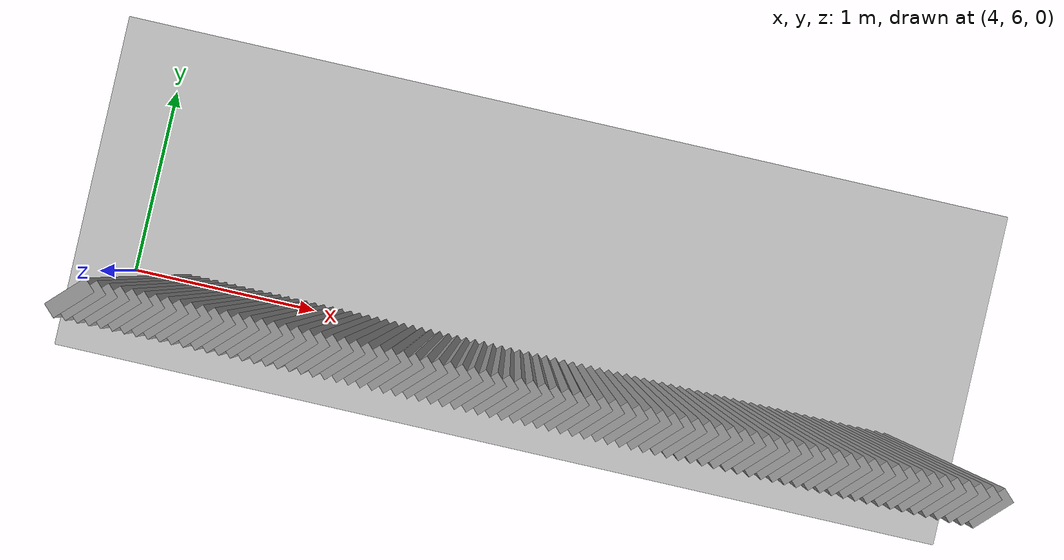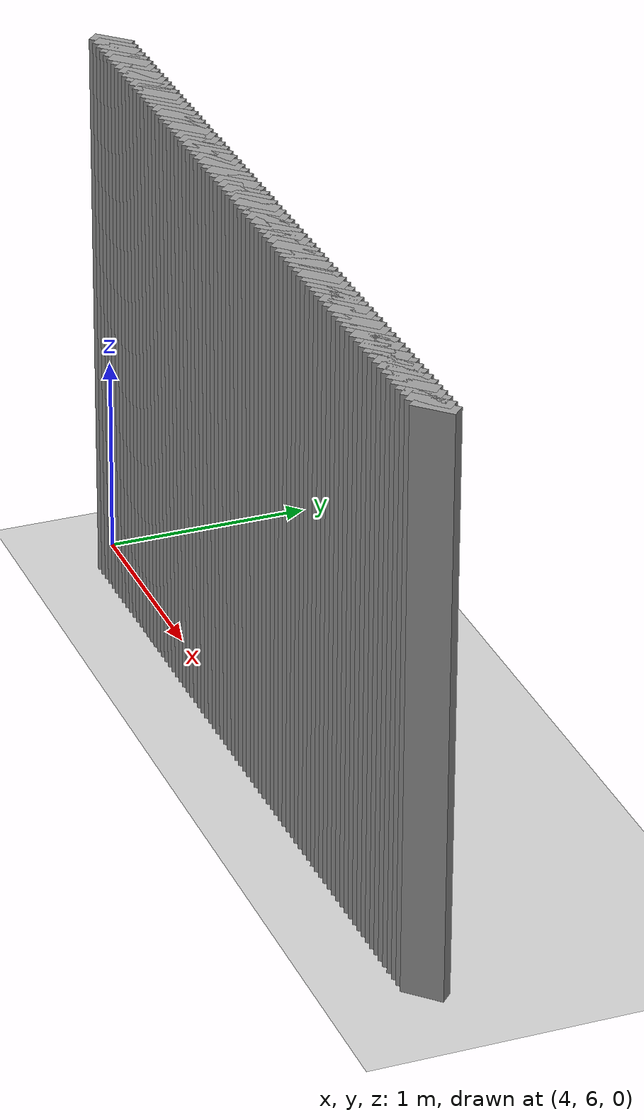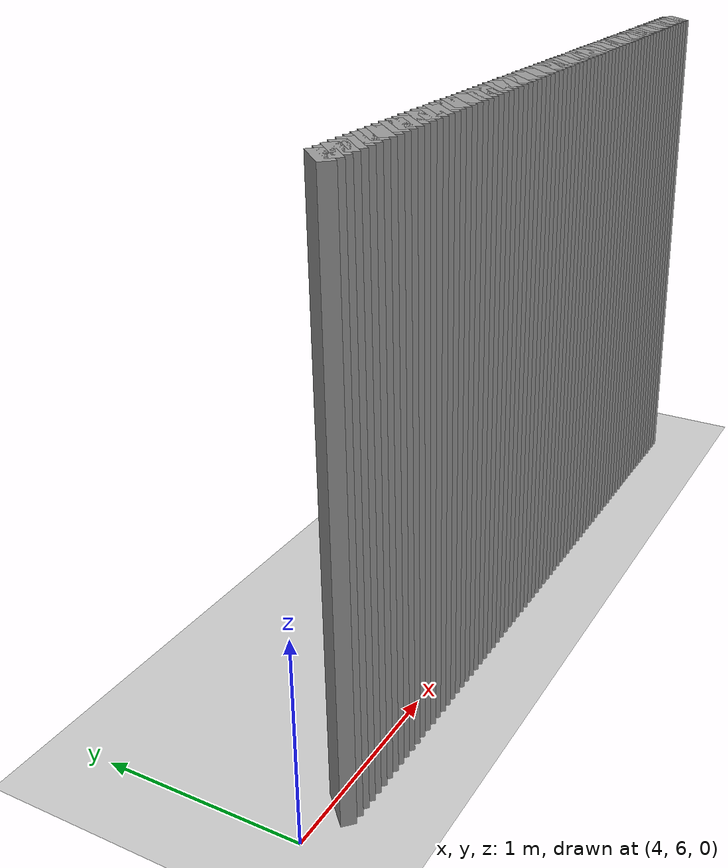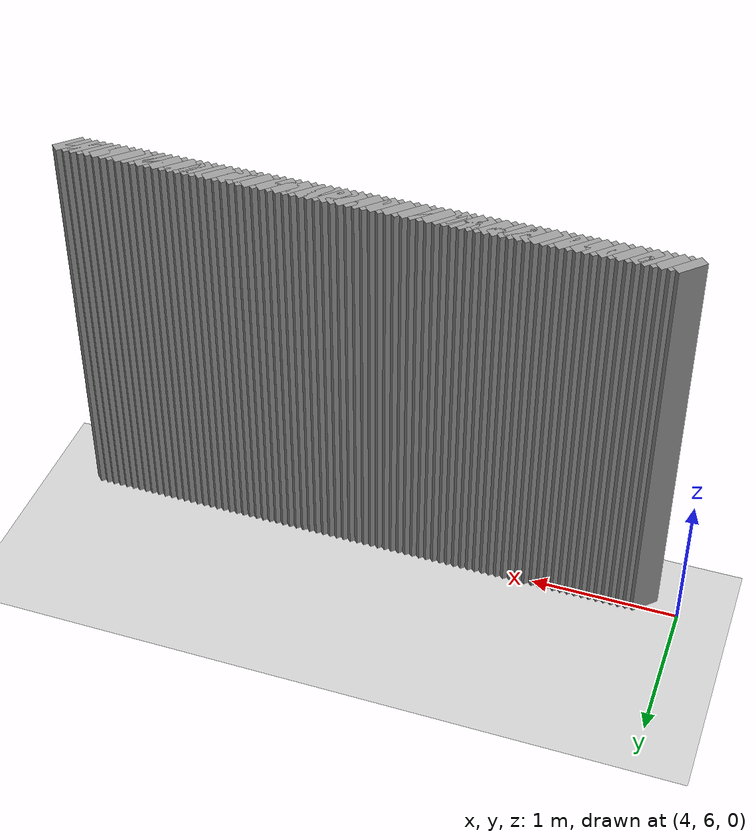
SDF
<sdf version="1.5">
 <world name="default">
  <include><uri>model://ground_plane</uri></include>
  <include><uri>model://sun</uri></include>
  <model name="grey_wall_4412">
   <static>1</static>
   <link name="link">
    <pose>4.25 5.95  1.4 0 0 -0.785398163397</pose>
    <collision name="collision"><geometry><box><size>0.0707106781187 .2  2.8</size></box></geometry></collision>
    <visual name="visual">
     <cast_shadows>0</cast_shadows>
     <geometry><box><size>0.0707106781187 .2  2.8</size></box></geometry>
     <material>
      <script>
       <uri>model://grey_wall/materials/scripts</uri>
       <uri>model://grey_wall/materials/textures</uri>
       <name>vrc/grey_wall</name>
      </script>
     </material>
    </visual>
   </link>
  </model>
  <model name="grey_wall_4413">
   <static>1</static>
   <link name="link">
    <pose>4.3 5.95  1.4 0 0 -0.785398163397</pose>
    <collision name="collision"><geometry><box><size>0.0707106781187 .2  2.8</size></box></geometry></collision>
    <visual name="visual">
     <cast_shadows>0</cast_shadows>
     <geometry><box><size>0.0707106781187 .2  2.8</size></box></geometry>
     <material>
      <script>
       <uri>model://grey_wall/materials/scripts</uri>
       <uri>model://grey_wall/materials/textures</uri>
       <name>vrc/grey_wall</name>
      </script>
     </material>
    </visual>
   </link>
  </model>
  <model name="grey_wall_4414">
   <static>1</static>
   <link name="link">
    <pose>4.35 5.95  1.4 0 0 -0.785398163397</pose>
    <collision name="collision"><geometry><box><size>0.0707106781187 .2  2.8</size></box></geometry></collision>
    <visual name="visual">
     <cast_shadows>0</cast_shadows>
     <geometry><box><size>0.0707106781187 .2  2.8</size></box></geometry>
     <material>
      <script>
       <uri>model://grey_wall/materials/scripts</uri>
       <uri>model://grey_wall/materials/textures</uri>
       <name>vrc/grey_wall</name>
      </script>
     </material>
    </visual>
   </link>
  </model>
  <model name="grey_wall_4415">
   <static>1</static>
   <link name="link">
    <pose>4.4 5.95  1.4 0 0 -0.785398163397</pose>
    <collision name="collision"><geometry><box><size>0.0707106781187 .2  2.8</size></box></geometry></collision>
    <visual name="visual">
     <cast_shadows>0</cast_shadows>
     <geometry><box><size>0.0707106781187 .2  2.8</size></box></geometry>
     <material>
      <script>
       <uri>model://grey_wall/materials/scripts</uri>
       <uri>model://grey_wall/materials/textures</uri>
       <name>vrc/grey_wall</name>
      </script>
     </material>
    </visual>
   </link>
  </model>
  <model name="grey_wall_4416">
   <static>1</static>
   <link name="link">
    <pose>4.45 5.95  1.4 0 0 -0.785398163397</pose>
    <collision name="collision"><geometry><box><size>0.0707106781187 .2  2.8</size></box></geometry></collision>
    <visual name="visual">
     <cast_shadows>0</cast_shadows>
     <geometry><box><size>0.0707106781187 .2  2.8</size></box></geometry>
     <material>
      <script>
       <uri>model://grey_wall/materials/scripts</uri>
       <uri>model://grey_wall/materials/textures</uri>
       <name>vrc/grey_wall</name>
      </script>
     </material>
    </visual>
   </link>
  </model>
  <model name="grey_wall_4417">
   <static>1</static>
   <link name="link">
    <pose>4.5 5.95  1.4 0 0 -0.785398163397</pose>
    <collision name="collision"><geometry><box><size>0.0707106781187 .2  2.8</size></box></geometry></collision>
    <visual name="visual">
     <cast_shadows>0</cast_shadows>
     <geometry><box><size>0.0707106781187 .2  2.8</size></box></geometry>
     <material>
      <script>
       <uri>model://grey_wall/materials/scripts</uri>
       <uri>model://grey_wall/materials/textures</uri>
       <name>vrc/grey_wall</name>
      </script>
     </material>
    </visual>
   </link>
  </model>
  <model name="grey_wall_4418">
   <static>1</static>
   <link name="link">
    <pose>4.55 5.95  1.4 0 0 -0.785398163397</pose>
    <collision name="collision"><geometry><box><size>0.0707106781187 .2  2.8</size></box></geometry></collision>
    <visual name="visual">
     <cast_shadows>0</cast_shadows>
     <geometry><box><size>0.0707106781187 .2  2.8</size></box></geometry>
     <material>
      <script>
       <uri>model://grey_wall/materials/scripts</uri>
       <uri>model://grey_wall/materials/textures</uri>
       <name>vrc/grey_wall</name>
      </script>
     </material>
    </visual>
   </link>
  </model>
  <model name="grey_wall_4419">
   <static>1</static>
   <link name="link">
    <pose>4.6 5.95  1.4 0 0 -0.785398163397</pose>
    <collision name="collision"><geometry><box><size>0.0707106781187 .2  2.8</size></box></geometry></collision>
    <visual name="visual">
     <cast_shadows>0</cast_shadows>
     <geometry><box><size>0.0707106781187 .2  2.8</size></box></geometry>
     <material>
      <script>
       <uri>model://grey_wall/materials/scripts</uri>
       <uri>model://grey_wall/materials/textures</uri>
       <name>vrc/grey_wall</name>
      </script>
     </material>
    </visual>
   </link>
  </model>
  <model name="grey_wall_4420">
   <static>1</static>
   <link name="link">
    <pose>4.65 5.95  1.4 0 0 -0.785398163397</pose>
    <collision name="collision"><geometry><box><size>0.0707106781187 .2  2.8</size></box></geometry></collision>
    <visual name="visual">
     <cast_shadows>0</cast_shadows>
     <geometry><box><size>0.0707106781187 .2  2.8</size></box></geometry>
     <material>
      <script>
       <uri>model://grey_wall/materials/scripts</uri>
       <uri>model://grey_wall/materials/textures</uri>
       <name>vrc/grey_wall</name>
      </script>
     </material>
    </visual>
   </link>
  </model>
  <model name="grey_wall_4421">
   <static>1</static>
   <link name="link">
    <pose>4.7 5.95  1.4 0 0 -0.785398163397</pose>
    <collision name="collision"><geometry><box><size>0.0707106781187 .2  2.8</size></box></geometry></collision>
    <visual name="visual">
     <cast_shadows>0</cast_shadows>
     <geometry><box><size>0.0707106781187 .2  2.8</size></box></geometry>
     <material>
      <script>
       <uri>model://grey_wall/materials/scripts</uri>
       <uri>model://grey_wall/materials/textures</uri>
       <name>vrc/grey_wall</name>
      </script>
     </material>
    </visual>
   </link>
  </model>
  <model name="grey_wall_4422">
   <static>1</static>
   <link name="link">
    <pose>4.75 5.95  1.4 0 0 -0.785398163397</pose>
    <collision name="collision"><geometry><box><size>0.0707106781187 .2  2.8</size></box></geometry></collision>
    <visual name="visual">
     <cast_shadows>0</cast_shadows>
     <geometry><box><size>0.0707106781187 .2  2.8</size></box></geometry>
     <material>
      <script>
       <uri>model://grey_wall/materials/scripts</uri>
       <uri>model://grey_wall/materials/textures</uri>
       <name>vrc/grey_wall</name>
      </script>
     </material>
    </visual>
   </link>
  </model>
  <model name="grey_wall_4423">
   <static>1</static>
   <link name="link">
    <pose>4.8 5.95  1.4 0 0 -0.785398163397</pose>
    <collision name="collision"><geometry><box><size>0.0707106781187 .2  2.8</size></box></geometry></collision>
    <visual name="visual">
     <cast_shadows>0</cast_shadows>
     <geometry><box><size>0.0707106781187 .2  2.8</size></box></geometry>
     <material>
      <script>
       <uri>model://grey_wall/materials/scripts</uri>
       <uri>model://grey_wall/materials/textures</uri>
       <name>vrc/grey_wall</name>
      </script>
     </material>
    </visual>
   </link>
  </model>
  <model name="grey_wall_4424">
   <static>1</static>
   <link name="link">
    <pose>4.85 5.95  1.4 0 0 -0.785398163397</pose>
    <collision name="collision"><geometry><box><size>0.0707106781187 .2  2.8</size></box></geometry></collision>
    <visual name="visual">
     <cast_shadows>0</cast_shadows>
     <geometry><box><size>0.0707106781187 .2  2.8</size></box></geometry>
     <material>
      <script>
       <uri>model://grey_wall/materials/scripts</uri>
       <uri>model://grey_wall/materials/textures</uri>
       <name>vrc/grey_wall</name>
      </script>
     </material>
    </visual>
   </link>
  </model>
  <model name="grey_wall_4425">
   <static>1</static>
   <link name="link">
    <pose>4.9 5.95  1.4 0 0 -0.785398163397</pose>
    <collision name="collision"><geometry><box><size>0.0707106781187 .2  2.8</size></box></geometry></collision>
    <visual name="visual">
     <cast_shadows>0</cast_shadows>
     <geometry><box><size>0.0707106781187 .2  2.8</size></box></geometry>
     <material>
      <script>
       <uri>model://grey_wall/materials/scripts</uri>
       <uri>model://grey_wall/materials/textures</uri>
       <name>vrc/grey_wall</name>
      </script>
     </material>
    </visual>
   </link>
  </model>
  <model name="grey_wall_4426">
   <static>1</static>
   <link name="link">
    <pose>4.95 5.95  1.4 0 0 -0.785398163397</pose>
    <collision name="collision"><geometry><box><size>0.0707106781187 .2  2.8</size></box></geometry></collision>
    <visual name="visual">
     <cast_shadows>0</cast_shadows>
     <geometry><box><size>0.0707106781187 .2  2.8</size></box></geometry>
     <material>
      <script>
       <uri>model://grey_wall/materials/scripts</uri>
       <uri>model://grey_wall/materials/textures</uri>
       <name>vrc/grey_wall</name>
      </script>
     </material>
    </visual>
   </link>
  </model>
  <model name="grey_wall_4427">
   <static>1</static>
   <link name="link">
    <pose>5.0 5.95  1.4 0 0 -0.785398163397</pose>
    <collision name="collision"><geometry><box><size>0.0707106781187 .2  2.8</size></box></geometry></collision>
    <visual name="visual">
     <cast_shadows>0</cast_shadows>
     <geometry><box><size>0.0707106781187 .2  2.8</size></box></geometry>
     <material>
      <script>
       <uri>model://grey_wall/materials/scripts</uri>
       <uri>model://grey_wall/materials/textures</uri>
       <name>vrc/grey_wall</name>
      </script>
     </material>
    </visual>
   </link>
  </model>
  <model name="grey_wall_4428">
   <static>1</static>
   <link name="link">
    <pose>5.05 5.95  1.4 0 0 -0.785398163397</pose>
    <collision name="collision"><geometry><box><size>0.0707106781187 .2  2.8</size></box></geometry></collision>
    <visual name="visual">
     <cast_shadows>0</cast_shadows>
     <geometry><box><size>0.0707106781187 .2  2.8</size></box></geometry>
     <material>
      <script>
       <uri>model://grey_wall/materials/scripts</uri>
       <uri>model://grey_wall/materials/textures</uri>
       <name>vrc/grey_wall</name>
      </script>
     </material>
    </visual>
   </link>
  </model>
  <model name="grey_wall_4429">
   <static>1</static>
   <link name="link">
    <pose>5.1 5.95  1.4 0 0 -0.785398163397</pose>
    <collision name="collision"><geometry><box><size>0.0707106781187 .2  2.8</size></box></geometry></collision>
    <visual name="visual">
     <cast_shadows>0</cast_shadows>
     <geometry><box><size>0.0707106781187 .2  2.8</size></box></geometry>
     <material>
      <script>
       <uri>model://grey_wall/materials/scripts</uri>
       <uri>model://grey_wall/materials/textures</uri>
       <name>vrc/grey_wall</name>
      </script>
     </material>
    </visual>
   </link>
  </model>
  <model name="grey_wall_4430">
   <static>1</static>
   <link name="link">
    <pose>5.15 5.95  1.4 0 0 -0.785398163397</pose>
    <collision name="collision"><geometry><box><size>0.0707106781187 .2  2.8</size></box></geometry></collision>
    <visual name="visual">
     <cast_shadows>0</cast_shadows>
     <geometry><box><size>0.0707106781187 .2  2.8</size></box></geometry>
     <material>
      <script>
       <uri>model://grey_wall/materials/scripts</uri>
       <uri>model://grey_wall/materials/textures</uri>
       <name>vrc/grey_wall</name>
      </script>
     </material>
    </visual>
   </link>
  </model>
  <model name="grey_wall_4431">
   <static>1</static>
   <link name="link">
    <pose>5.2 5.95  1.4 0 0 -0.785398163397</pose>
    <collision name="collision"><geometry><box><size>0.0707106781187 .2  2.8</size></box></geometry></collision>
    <visual name="visual">
     <cast_shadows>0</cast_shadows>
     <geometry><box><size>0.0707106781187 .2  2.8</size></box></geometry>
     <material>
      <script>
       <uri>model://grey_wall/materials/scripts</uri>
       <uri>model://grey_wall/materials/textures</uri>
       <name>vrc/grey_wall</name>
      </script>
     </material>
    </visual>
   </link>
  </model>
  <model name="grey_wall_4432">
   <static>1</static>
   <link name="link">
    <pose>5.25 5.95  1.4 0 0 -0.785398163397</pose>
    <collision name="collision"><geometry><box><size>0.0707106781187 .2  2.8</size></box></geometry></collision>
    <visual name="visual">
     <cast_shadows>0</cast_shadows>
     <geometry><box><size>0.0707106781187 .2  2.8</size></box></geometry>
     <material>
      <script>
       <uri>model://grey_wall/materials/scripts</uri>
       <uri>model://grey_wall/materials/textures</uri>
       <name>vrc/grey_wall</name>
      </script>
     </material>
    </visual>
   </link>
  </model>
  <model name="grey_wall_4433">
   <static>1</static>
   <link name="link">
    <pose>5.3 5.95  1.4 0 0 -0.785398163397</pose>
    <collision name="collision"><geometry><box><size>0.0707106781187 .2  2.8</size></box></geometry></collision>
    <visual name="visual">
     <cast_shadows>0</cast_shadows>
     <geometry><box><size>0.0707106781187 .2  2.8</size></box></geometry>
     <material>
      <script>
       <uri>model://grey_wall/materials/scripts</uri>
       <uri>model://grey_wall/materials/textures</uri>
       <name>vrc/grey_wall</name>
      </script>
     </material>
    </visual>
   </link>
  </model>
  <model name="grey_wall_4434">
   <static>1</static>
   <link name="link">
    <pose>5.35 5.95  1.4 0 0 -0.785398163397</pose>
    <collision name="collision"><geometry><box><size>0.0707106781187 .2  2.8</size></box></geometry></collision>
    <visual name="visual">
     <cast_shadows>0</cast_shadows>
     <geometry><box><size>0.0707106781187 .2  2.8</size></box></geometry>
     <material>
      <script>
       <uri>model://grey_wall/materials/scripts</uri>
       <uri>model://grey_wall/materials/textures</uri>
       <name>vrc/grey_wall</name>
      </script>
     </material>
    </visual>
   </link>
  </model>
  <model name="grey_wall_4435">
   <static>1</static>
   <link name="link">
    <pose>5.4 5.95  1.4 0 0 -0.785398163397</pose>
    <collision name="collision"><geometry><box><size>0.0707106781187 .2  2.8</size></box></geometry></collision>
    <visual name="visual">
     <cast_shadows>0</cast_shadows>
     <geometry><box><size>0.0707106781187 .2  2.8</size></box></geometry>
     <material>
      <script>
       <uri>model://grey_wall/materials/scripts</uri>
       <uri>model://grey_wall/materials/textures</uri>
       <name>vrc/grey_wall</name>
      </script>
     </material>
    </visual>
   </link>
  </model>
  <model name="grey_wall_4436">
   <static>1</static>
   <link name="link">
    <pose>5.45 5.95  1.4 0 0 -0.785398163397</pose>
    <collision name="collision"><geometry><box><size>0.0707106781187 .2  2.8</size></box></geometry></collision>
    <visual name="visual">
     <cast_shadows>0</cast_shadows>
     <geometry><box><size>0.0707106781187 .2  2.8</size></box></geometry>
     <material>
      <script>
       <uri>model://grey_wall/materials/scripts</uri>
       <uri>model://grey_wall/materials/textures</uri>
       <name>vrc/grey_wall</name>
      </script>
     </material>
    </visual>
   </link>
  </model>
  <model name="grey_wall_4437">
   <static>1</static>
   <link name="link">
    <pose>5.5 5.95  1.4 0 0 -0.785398163397</pose>
    <collision name="collision"><geometry><box><size>0.0707106781187 .2  2.8</size></box></geometry></collision>
    <visual name="visual">
     <cast_shadows>0</cast_shadows>
     <geometry><box><size>0.0707106781187 .2  2.8</size></box></geometry>
     <material>
      <script>
       <uri>model://grey_wall/materials/scripts</uri>
       <uri>model://grey_wall/materials/textures</uri>
       <name>vrc/grey_wall</name>
      </script>
     </material>
    </visual>
   </link>
  </model>
  <model name="grey_wall_4438">
   <static>1</static>
   <link name="link">
    <pose>5.55 5.95  1.4 0 0 -0.785398163397</pose>
    <collision name="collision"><geometry><box><size>0.0707106781187 .2  2.8</size></box></geometry></collision>
    <visual name="visual">
     <cast_shadows>0</cast_shadows>
     <geometry><box><size>0.0707106781187 .2  2.8</size></box></geometry>
     <material>
      <script>
       <uri>model://grey_wall/materials/scripts</uri>
       <uri>model://grey_wall/materials/textures</uri>
       <name>vrc/grey_wall</name>
      </script>
     </material>
    </visual>
   </link>
  </model>
  <model name="grey_wall_4439">
   <static>1</static>
   <link name="link">
    <pose>5.6 5.95  1.4 0 0 -0.785398163397</pose>
    <collision name="collision"><geometry><box><size>0.0707106781187 .2  2.8</size></box></geometry></collision>
    <visual name="visual">
     <cast_shadows>0</cast_shadows>
     <geometry><box><size>0.0707106781187 .2  2.8</size></box></geometry>
     <material>
      <script>
       <uri>model://grey_wall/materials/scripts</uri>
       <uri>model://grey_wall/materials/textures</uri>
       <name>vrc/grey_wall</name>
      </script>
     </material>
    </visual>
   </link>
  </model>
  <model name="grey_wall_4440">
   <static>1</static>
   <link name="link">
    <pose>5.65 5.95  1.4 0 0 -0.785398163397</pose>
    <collision name="collision"><geometry><box><size>0.0707106781187 .2  2.8</size></box></geometry></collision>
    <visual name="visual">
     <cast_shadows>0</cast_shadows>
     <geometry><box><size>0.0707106781187 .2  2.8</size></box></geometry>
     <material>
      <script>
       <uri>model://grey_wall/materials/scripts</uri>
       <uri>model://grey_wall/materials/textures</uri>
       <name>vrc/grey_wall</name>
      </script>
     </material>
    </visual>
   </link>
  </model>
  <model name="grey_wall_4441">
   <static>1</static>
   <link name="link">
    <pose>5.7 5.95  1.4 0 0 -0.785398163397</pose>
    <collision name="collision"><geometry><box><size>0.0707106781187 .2  2.8</size></box></geometry></collision>
    <visual name="visual">
     <cast_shadows>0</cast_shadows>
     <geometry><box><size>0.0707106781187 .2  2.8</size></box></geometry>
     <material>
      <script>
       <uri>model://grey_wall/materials/scripts</uri>
       <uri>model://grey_wall/materials/textures</uri>
       <name>vrc/grey_wall</name>
      </script>
     </material>
    </visual>
   </link>
  </model>
  <model name="grey_wall_4442">
   <static>1</static>
   <link name="link">
    <pose>5.75 5.95  1.4 0 0 -0.785398163397</pose>
    <collision name="collision"><geometry><box><size>0.0707106781187 .2  2.8</size></box></geometry></collision>
    <visual name="visual">
     <cast_shadows>0</cast_shadows>
     <geometry><box><size>0.0707106781187 .2  2.8</size></box></geometry>
     <material>
      <script>
       <uri>model://grey_wall/materials/scripts</uri>
       <uri>model://grey_wall/materials/textures</uri>
       <name>vrc/grey_wall</name>
      </script>
     </material>
    </visual>
   </link>
  </model>
  <model name="grey_wall_4443">
   <static>1</static>
   <link name="link">
    <pose>5.8 5.95  1.4 0 0 -0.785398163397</pose>
    <collision name="collision"><geometry><box><size>0.0707106781187 .2  2.8</size></box></geometry></collision>
    <visual name="visual">
     <cast_shadows>0</cast_shadows>
     <geometry><box><size>0.0707106781187 .2  2.8</size></box></geometry>
     <material>
      <script>
       <uri>model://grey_wall/materials/scripts</uri>
       <uri>model://grey_wall/materials/textures</uri>
       <name>vrc/grey_wall</name>
      </script>
     </material>
    </visual>
   </link>
  </model>
  <model name="grey_wall_4444">
   <static>1</static>
   <link name="link">
    <pose>5.85 5.95  1.4 0 0 -0.785398163397</pose>
    <collision name="collision"><geometry><box><size>0.0707106781187 .2  2.8</size></box></geometry></collision>
    <visual name="visual">
     <cast_shadows>0</cast_shadows>
     <geometry><box><size>0.0707106781187 .2  2.8</size></box></geometry>
     <material>
      <script>
       <uri>model://grey_wall/materials/scripts</uri>
       <uri>model://grey_wall/materials/textures</uri>
       <name>vrc/grey_wall</name>
      </script>
     </material>
    </visual>
   </link>
  </model>
  <model name="grey_wall_4445">
   <static>1</static>
   <link name="link">
    <pose>5.9 5.95  1.4 0 0 -0.785398163397</pose>
    <collision name="collision"><geometry><box><size>0.0707106781187 .2  2.8</size></box></geometry></collision>
    <visual name="visual">
     <cast_shadows>0</cast_shadows>
     <geometry><box><size>0.0707106781187 .2  2.8</size></box></geometry>
     <material>
      <script>
       <uri>model://grey_wall/materials/scripts</uri>
       <uri>model://grey_wall/materials/textures</uri>
       <name>vrc/grey_wall</name>
      </script>
     </material>
    </visual>
   </link>
  </model>
  <model name="grey_wall_4446">
   <static>1</static>
   <link name="link">
    <pose>5.95 5.95  1.4 0 0 -0.785398163397</pose>
    <collision name="collision"><geometry><box><size>0.0707106781187 .2  2.8</size></box></geometry></collision>
    <visual name="visual">
     <cast_shadows>0</cast_shadows>
     <geometry><box><size>0.0707106781187 .2  2.8</size></box></geometry>
     <material>
      <script>
       <uri>model://grey_wall/materials/scripts</uri>
       <uri>model://grey_wall/materials/textures</uri>
       <name>vrc/grey_wall</name>
      </script>
     </material>
    </visual>
   </link>
  </model>
  <model name="grey_wall_4447">
   <static>1</static>
   <link name="link">
    <pose>6.0 5.95  1.4 0 0 -0.785398163397</pose>
    <collision name="collision"><geometry><box><size>0.0707106781187 .2  2.8</size></box></geometry></collision>
    <visual name="visual">
     <cast_shadows>0</cast_shadows>
     <geometry><box><size>0.0707106781187 .2  2.8</size></box></geometry>
     <material>
      <script>
       <uri>model://grey_wall/materials/scripts</uri>
       <uri>model://grey_wall/materials/textures</uri>
       <name>vrc/grey_wall</name>
      </script>
     </material>
    </visual>
   </link>
  </model>
  <model name="grey_wall_4448">
   <static>1</static>
   <link name="link">
    <pose>6.05 5.95  1.4 0 0 -0.785398163397</pose>
    <collision name="collision"><geometry><box><size>0.0707106781187 .2  2.8</size></box></geometry></collision>
    <visual name="visual">
     <cast_shadows>0</cast_shadows>
     <geometry><box><size>0.0707106781187 .2  2.8</size></box></geometry>
     <material>
      <script>
       <uri>model://grey_wall/materials/scripts</uri>
       <uri>model://grey_wall/materials/textures</uri>
       <name>vrc/grey_wall</name>
      </script>
     </material>
    </visual>
   </link>
  </model>
  <model name="grey_wall_4449">
   <static>1</static>
   <link name="link">
    <pose>6.1 5.95  1.4 0 0 -0.785398163397</pose>
    <collision name="collision"><geometry><box><size>0.0707106781187 .2  2.8</size></box></geometry></collision>
    <visual name="visual">
     <cast_shadows>0</cast_shadows>
     <geometry><box><size>0.0707106781187 .2  2.8</size></box></geometry>
     <material>
      <script>
       <uri>model://grey_wall/materials/scripts</uri>
       <uri>model://grey_wall/materials/textures</uri>
       <name>vrc/grey_wall</name>
      </script>
     </material>
    </visual>
   </link>
  </model>
  <model name="grey_wall_4450">
   <static>1</static>
   <link name="link">
    <pose>6.15 5.95  1.4 0 0 -0.785398163397</pose>
    <collision name="collision"><geometry><box><size>0.0707106781187 .2  2.8</size></box></geometry></collision>
    <visual name="visual">
     <cast_shadows>0</cast_shadows>
     <geometry><box><size>0.0707106781187 .2  2.8</size></box></geometry>
     <material>
      <script>
       <uri>model://grey_wall/materials/scripts</uri>
       <uri>model://grey_wall/materials/textures</uri>
       <name>vrc/grey_wall</name>
      </script>
     </material>
    </visual>
   </link>
  </model>
  <model name="grey_wall_4451">
   <static>1</static>
   <link name="link">
    <pose>6.2 5.95  1.4 0 0 -0.785398163397</pose>
    <collision name="collision"><geometry><box><size>0.0707106781187 .2  2.8</size></box></geometry></collision>
    <visual name="visual">
     <cast_shadows>0</cast_shadows>
     <geometry><box><size>0.0707106781187 .2  2.8</size></box></geometry>
     <material>
      <script>
       <uri>model://grey_wall/materials/scripts</uri>
       <uri>model://grey_wall/materials/textures</uri>
       <name>vrc/grey_wall</name>
      </script>
     </material>
    </visual>
   </link>
  </model>
  <model name="grey_wall_4452">
   <static>1</static>
   <link name="link">
    <pose>6.25 5.95  1.4 0 0 -0.785398163397</pose>
    <collision name="collision"><geometry><box><size>0.0707106781187 .2  2.8</size></box></geometry></collision>
    <visual name="visual">
     <cast_shadows>0</cast_shadows>
     <geometry><box><size>0.0707106781187 .2  2.8</size></box></geometry>
     <material>
      <script>
       <uri>model://grey_wall/materials/scripts</uri>
       <uri>model://grey_wall/materials/textures</uri>
       <name>vrc/grey_wall</name>
      </script>
     </material>
    </visual>
   </link>
  </model>
  <model name="grey_wall_4453">
   <static>1</static>
   <link name="link">
    <pose>6.3 5.95  1.4 0 0 -0.785398163397</pose>
    <collision name="collision"><geometry><box><size>0.0707106781187 .2  2.8</size></box></geometry></collision>
    <visual name="visual">
     <cast_shadows>0</cast_shadows>
     <geometry><box><size>0.0707106781187 .2  2.8</size></box></geometry>
     <material>
      <script>
       <uri>model://grey_wall/materials/scripts</uri>
       <uri>model://grey_wall/materials/textures</uri>
       <name>vrc/grey_wall</name>
      </script>
     </material>
    </visual>
   </link>
  </model>
  <model name="grey_wall_4454">
   <static>1</static>
   <link name="link">
    <pose>6.35 5.95  1.4 0 0 -0.785398163397</pose>
    <collision name="collision"><geometry><box><size>0.0707106781187 .2  2.8</size></box></geometry></collision>
    <visual name="visual">
     <cast_shadows>0</cast_shadows>
     <geometry><box><size>0.0707106781187 .2  2.8</size></box></geometry>
     <material>
      <script>
       <uri>model://grey_wall/materials/scripts</uri>
       <uri>model://grey_wall/materials/textures</uri>
       <name>vrc/grey_wall</name>
      </script>
     </material>
    </visual>
   </link>
  </model>
  <model name="grey_wall_4455">
   <static>1</static>
   <link name="link">
    <pose>6.4 5.95  1.4 0 0 -0.785398163397</pose>
    <collision name="collision"><geometry><box><size>0.0707106781187 .2  2.8</size></box></geometry></collision>
    <visual name="visual">
     <cast_shadows>0</cast_shadows>
     <geometry><box><size>0.0707106781187 .2  2.8</size></box></geometry>
     <material>
      <script>
       <uri>model://grey_wall/materials/scripts</uri>
       <uri>model://grey_wall/materials/textures</uri>
       <name>vrc/grey_wall</name>
      </script>
     </material>
    </visual>
   </link>
  </model>
  <model name="grey_wall_4456">
   <static>1</static>
   <link name="link">
    <pose>6.45 5.95  1.4 0 0 -0.785398163397</pose>
    <collision name="collision"><geometry><box><size>0.0707106781187 .2  2.8</size></box></geometry></collision>
    <visual name="visual">
     <cast_shadows>0</cast_shadows>
     <geometry><box><size>0.0707106781187 .2  2.8</size></box></geometry>
     <material>
      <script>
       <uri>model://grey_wall/materials/scripts</uri>
       <uri>model://grey_wall/materials/textures</uri>
       <name>vrc/grey_wall</name>
      </script>
     </material>
    </visual>
   </link>
  </model>
  <model name="grey_wall_4457">
   <static>1</static>
   <link name="link">
    <pose>6.5 5.95  1.4 0 0 -0.785398163397</pose>
    <collision name="collision"><geometry><box><size>0.0707106781187 .2  2.8</size></box></geometry></collision>
    <visual name="visual">
     <cast_shadows>0</cast_shadows>
     <geometry><box><size>0.0707106781187 .2  2.8</size></box></geometry>
     <material>
      <script>
       <uri>model://grey_wall/materials/scripts</uri>
       <uri>model://grey_wall/materials/textures</uri>
       <name>vrc/grey_wall</name>
      </script>
     </material>
    </visual>
   </link>
  </model>
  <model name="grey_wall_4458">
   <static>1</static>
   <link name="link">
    <pose>6.55 5.95  1.4 0 0 -0.785398163397</pose>
    <collision name="collision"><geometry><box><size>0.0707106781187 .2  2.8</size></box></geometry></collision>
    <visual name="visual">
     <cast_shadows>0</cast_shadows>
     <geometry><box><size>0.0707106781187 .2  2.8</size></box></geometry>
     <material>
      <script>
       <uri>model://grey_wall/materials/scripts</uri>
       <uri>model://grey_wall/materials/textures</uri>
       <name>vrc/grey_wall</name>
      </script>
     </material>
    </visual>
   </link>
  </model>
  <model name="grey_wall_4459">
   <static>1</static>
   <link name="link">
    <pose>6.6 5.95  1.4 0 0 -0.785398163397</pose>
    <collision name="collision"><geometry><box><size>0.0707106781187 .2  2.8</size></box></geometry></collision>
    <visual name="visual">
     <cast_shadows>0</cast_shadows>
     <geometry><box><size>0.0707106781187 .2  2.8</size></box></geometry>
     <material>
      <script>
       <uri>model://grey_wall/materials/scripts</uri>
       <uri>model://grey_wall/materials/textures</uri>
       <name>vrc/grey_wall</name>
      </script>
     </material>
    </visual>
   </link>
  </model>
  <model name="grey_wall_4460">
   <static>1</static>
   <link name="link">
    <pose>6.65 5.95  1.4 0 0 -0.785398163397</pose>
    <collision name="collision"><geometry><box><size>0.0707106781187 .2  2.8</size></box></geometry></collision>
    <visual name="visual">
     <cast_shadows>0</cast_shadows>
     <geometry><box><size>0.0707106781187 .2  2.8</size></box></geometry>
     <material>
      <script>
       <uri>model://grey_wall/materials/scripts</uri>
       <uri>model://grey_wall/materials/textures</uri>
       <name>vrc/grey_wall</name>
      </script>
     </material>
    </visual>
   </link>
  </model>
  <model name="grey_wall_4461">
   <static>1</static>
   <link name="link">
    <pose>6.7 5.95  1.4 0 0 -0.785398163397</pose>
    <collision name="collision"><geometry><box><size>0.0707106781187 .2  2.8</size></box></geometry></collision>
    <visual name="visual">
     <cast_shadows>0</cast_shadows>
     <geometry><box><size>0.0707106781187 .2  2.8</size></box></geometry>
     <material>
      <script>
       <uri>model://grey_wall/materials/scripts</uri>
       <uri>model://grey_wall/materials/textures</uri>
       <name>vrc/grey_wall</name>
      </script>
     </material>
    </visual>
   </link>
  </model>
  <model name="grey_wall_4462">
   <static>1</static>
   <link name="link">
    <pose>6.75 5.95  1.4 0 0 -0.785398163397</pose>
    <collision name="collision"><geometry><box><size>0.0707106781187 .2  2.8</size></box></geometry></collision>
    <visual name="visual">
     <cast_shadows>0</cast_shadows>
     <geometry><box><size>0.0707106781187 .2  2.8</size></box></geometry>
     <material>
      <script>
       <uri>model://grey_wall/materials/scripts</uri>
       <uri>model://grey_wall/materials/textures</uri>
       <name>vrc/grey_wall</name>
      </script>
     </material>
    </visual>
   </link>
  </model>
  <model name="grey_wall_4463">
   <static>1</static>
   <link name="link">
    <pose>6.8 5.95  1.4 0 0 -0.785398163397</pose>
    <collision name="collision"><geometry><box><size>0.0707106781187 .2  2.8</size></box></geometry></collision>
    <visual name="visual">
     <cast_shadows>0</cast_shadows>
     <geometry><box><size>0.0707106781187 .2  2.8</size></box></geometry>
     <material>
      <script>
       <uri>model://grey_wall/materials/scripts</uri>
       <uri>model://grey_wall/materials/textures</uri>
       <name>vrc/grey_wall</name>
      </script>
     </material>
    </visual>
   </link>
  </model>
  <model name="grey_wall_4464">
   <static>1</static>
   <link name="link">
    <pose>6.85 5.95  1.4 0 0 -0.785398163397</pose>
    <collision name="collision"><geometry><box><size>0.0707106781187 .2  2.8</size></box></geometry></collision>
    <visual name="visual">
     <cast_shadows>0</cast_shadows>
     <geometry><box><size>0.0707106781187 .2  2.8</size></box></geometry>
     <material>
      <script>
       <uri>model://grey_wall/materials/scripts</uri>
       <uri>model://grey_wall/materials/textures</uri>
       <name>vrc/grey_wall</name>
      </script>
     </material>
    </visual>
   </link>
  </model>
  <model name="grey_wall_4465">
   <static>1</static>
   <link name="link">
    <pose>6.9 5.95  1.4 0 0 -0.785398163397</pose>
    <collision name="collision"><geometry><box><size>0.0707106781187 .2  2.8</size></box></geometry></collision>
    <visual name="visual">
     <cast_shadows>0</cast_shadows>
     <geometry><box><size>0.0707106781187 .2  2.8</size></box></geometry>
     <material>
      <script>
       <uri>model://grey_wall/materials/scripts</uri>
       <uri>model://grey_wall/materials/textures</uri>
       <name>vrc/grey_wall</name>
      </script>
     </material>
    </visual>
   </link>
  </model>
  <model name="grey_wall_4466">
   <static>1</static>
   <link name="link">
    <pose>6.95 5.95  1.4 0 0 -0.785398163397</pose>
    <collision name="collision"><geometry><box><size>0.0707106781187 .2  2.8</size></box></geometry></collision>
    <visual name="visual">
     <cast_shadows>0</cast_shadows>
     <geometry><box><size>0.0707106781187 .2  2.8</size></box></geometry>
     <material>
      <script>
       <uri>model://grey_wall/materials/scripts</uri>
       <uri>model://grey_wall/materials/textures</uri>
       <name>vrc/grey_wall</name>
      </script>
     </material>
    </visual>
   </link>
  </model>
  <model name="grey_wall_4467">
   <static>1</static>
   <link name="link">
    <pose>7.0 5.95  1.4 0 0 -0.785398163397</pose>
    <collision name="collision"><geometry><box><size>0.0707106781187 .2  2.8</size></box></geometry></collision>
    <visual name="visual">
     <cast_shadows>0</cast_shadows>
     <geometry><box><size>0.0707106781187 .2  2.8</size></box></geometry>
     <material>
      <script>
       <uri>model://grey_wall/materials/scripts</uri>
       <uri>model://grey_wall/materials/textures</uri>
       <name>vrc/grey_wall</name>
      </script>
     </material>
    </visual>
   </link>
  </model>
  <model name="grey_wall_4468">
   <static>1</static>
   <link name="link">
    <pose>7.05 5.95  1.4 0 0 -0.785398163397</pose>
    <collision name="collision"><geometry><box><size>0.0707106781187 .2  2.8</size></box></geometry></collision>
    <visual name="visual">
     <cast_shadows>0</cast_shadows>
     <geometry><box><size>0.0707106781187 .2  2.8</size></box></geometry>
     <material>
      <script>
       <uri>model://grey_wall/materials/scripts</uri>
       <uri>model://grey_wall/materials/textures</uri>
       <name>vrc/grey_wall</name>
      </script>
     </material>
    </visual>
   </link>
  </model>
  <model name="grey_wall_4469">
   <static>1</static>
   <link name="link">
    <pose>7.1 5.95  1.4 0 0 -0.785398163397</pose>
    <collision name="collision"><geometry><box><size>0.0707106781187 .2  2.8</size></box></geometry></collision>
    <visual name="visual">
     <cast_shadows>0</cast_shadows>
     <geometry><box><size>0.0707106781187 .2  2.8</size></box></geometry>
     <material>
      <script>
       <uri>model://grey_wall/materials/scripts</uri>
       <uri>model://grey_wall/materials/textures</uri>
       <name>vrc/grey_wall</name>
      </script>
     </material>
    </visual>
   </link>
  </model>
  <model name="grey_wall_4470">
   <static>1</static>
   <link name="link">
    <pose>7.15 5.95  1.4 0 0 -0.785398163397</pose>
    <collision name="collision"><geometry><box><size>0.0707106781187 .2  2.8</size></box></geometry></collision>
    <visual name="visual">
     <cast_shadows>0</cast_shadows>
     <geometry><box><size>0.0707106781187 .2  2.8</size></box></geometry>
     <material>
      <script>
       <uri>model://grey_wall/materials/scripts</uri>
       <uri>model://grey_wall/materials/textures</uri>
       <name>vrc/grey_wall</name>
      </script>
     </material>
    </visual>
   </link>
  </model>
  <model name="grey_wall_4471">
   <static>1</static>
   <link name="link">
    <pose>7.2 5.95  1.4 0 0 -0.785398163397</pose>
    <collision name="collision"><geometry><box><size>0.0707106781187 .2  2.8</size></box></geometry></collision>
    <visual name="visual">
     <cast_shadows>0</cast_shadows>
     <geometry><box><size>0.0707106781187 .2  2.8</size></box></geometry>
     <material>
      <script>
       <uri>model://grey_wall/materials/scripts</uri>
       <uri>model://grey_wall/materials/textures</uri>
       <name>vrc/grey_wall</name>
      </script>
     </material>
    </visual>
   </link>
  </model>
  <model name="grey_wall_4472">
   <static>1</static>
   <link name="link">
    <pose>7.25 5.95  1.4 0 0 -0.785398163397</pose>
    <collision name="collision"><geometry><box><size>0.0707106781187 .2  2.8</size></box></geometry></collision>
    <visual name="visual">
     <cast_shadows>0</cast_shadows>
     <geometry><box><size>0.0707106781187 .2  2.8</size></box></geometry>
     <material>
      <script>
       <uri>model://grey_wall/materials/scripts</uri>
       <uri>model://grey_wall/materials/textures</uri>
       <name>vrc/grey_wall</name>
      </script>
     </material>
    </visual>
   </link>
  </model>
  <model name="grey_wall_4473">
   <static>1</static>
   <link name="link">
    <pose>7.3 5.95  1.4 0 0 -0.785398163397</pose>
    <collision name="collision"><geometry><box><size>0.0707106781187 .2  2.8</size></box></geometry></collision>
    <visual name="visual">
     <cast_shadows>0</cast_shadows>
     <geometry><box><size>0.0707106781187 .2  2.8</size></box></geometry>
     <material>
      <script>
       <uri>model://grey_wall/materials/scripts</uri>
       <uri>model://grey_wall/materials/textures</uri>
       <name>vrc/grey_wall</name>
      </script>
     </material>
    </visual>
   </link>
  </model>
  <model name="grey_wall_4474">
   <static>1</static>
   <link name="link">
    <pose>7.35 5.95  1.4 0 0 -0.785398163397</pose>
    <collision name="collision"><geometry><box><size>0.0707106781187 .2  2.8</size></box></geometry></collision>
    <visual name="visual">
     <cast_shadows>0</cast_shadows>
     <geometry><box><size>0.0707106781187 .2  2.8</size></box></geometry>
     <material>
      <script>
       <uri>model://grey_wall/materials/scripts</uri>
       <uri>model://grey_wall/materials/textures</uri>
       <name>vrc/grey_wall</name>
      </script>
     </material>
    </visual>
   </link>
  </model>
  <model name="grey_wall_4475">
   <static>1</static>
   <link name="link">
    <pose>7.4 5.95  1.4 0 0 -0.785398163397</pose>
    <collision name="collision"><geometry><box><size>0.0707106781187 .2  2.8</size></box></geometry></collision>
    <visual name="visual">
     <cast_shadows>0</cast_shadows>
     <geometry><box><size>0.0707106781187 .2  2.8</size></box></geometry>
     <material>
      <script>
       <uri>model://grey_wall/materials/scripts</uri>
       <uri>model://grey_wall/materials/textures</uri>
       <name>vrc/grey_wall</name>
      </script>
     </material>
    </visual>
   </link>
  </model>
  <model name="grey_wall_4476">
   <static>1</static>
   <link name="link">
    <pose>7.45 5.95  1.4 0 0 -0.785398163397</pose>
    <collision name="collision"><geometry><box><size>0.0707106781187 .2  2.8</size></box></geometry></collision>
    <visual name="visual">
     <cast_shadows>0</cast_shadows>
     <geometry><box><size>0.0707106781187 .2  2.8</size></box></geometry>
     <material>
      <script>
       <uri>model://grey_wall/materials/scripts</uri>
       <uri>model://grey_wall/materials/textures</uri>
       <name>vrc/grey_wall</name>
      </script>
     </material>
    </visual>
   </link>
  </model>
  <model name="grey_wall_4477">
   <static>1</static>
   <link name="link">
    <pose>7.5 5.95  1.4 0 0 -0.785398163397</pose>
    <collision name="collision"><geometry><box><size>0.0707106781187 .2  2.8</size></box></geometry></collision>
    <visual name="visual">
     <cast_shadows>0</cast_shadows>
     <geometry><box><size>0.0707106781187 .2  2.8</size></box></geometry>
     <material>
      <script>
       <uri>model://grey_wall/materials/scripts</uri>
       <uri>model://grey_wall/materials/textures</uri>
       <name>vrc/grey_wall</name>
      </script>
     </material>
    </visual>
   </link>
  </model>
  <model name="grey_wall_4478">
   <static>1</static>
   <link name="link">
    <pose>7.55 5.95  1.4 0 0 -0.785398163397</pose>
    <collision name="collision"><geometry><box><size>0.0707106781187 .2  2.8</size></box></geometry></collision>
    <visual name="visual">
     <cast_shadows>0</cast_shadows>
     <geometry><box><size>0.0707106781187 .2  2.8</size></box></geometry>
     <material>
      <script>
       <uri>model://grey_wall/materials/scripts</uri>
       <uri>model://grey_wall/materials/textures</uri>
       <name>vrc/grey_wall</name>
      </script>
     </material>
    </visual>
   </link>
  </model>
  <model name="grey_wall_4479">
   <static>1</static>
   <link name="link">
    <pose>7.6 5.95  1.4 0 0 -0.785398163397</pose>
    <collision name="collision"><geometry><box><size>0.0707106781187 .2  2.8</size></box></geometry></collision>
    <visual name="visual">
     <cast_shadows>0</cast_shadows>
     <geometry><box><size>0.0707106781187 .2  2.8</size></box></geometry>
     <material>
      <script>
       <uri>model://grey_wall/materials/scripts</uri>
       <uri>model://grey_wall/materials/textures</uri>
       <name>vrc/grey_wall</name>
      </script>
     </material>
    </visual>
   </link>
  </model>
  <model name="grey_wall_4480">
   <static>1</static>
   <link name="link">
    <pose>7.65 5.95  1.4 0 0 -0.785398163397</pose>
    <collision name="collision"><geometry><box><size>0.0707106781187 .2  2.8</size></box></geometry></collision>
    <visual name="visual">
     <cast_shadows>0</cast_shadows>
     <geometry><box><size>0.0707106781187 .2  2.8</size></box></geometry>
     <material>
      <script>
       <uri>model://grey_wall/materials/scripts</uri>
       <uri>model://grey_wall/materials/textures</uri>
       <name>vrc/grey_wall</name>
      </script>
     </material>
    </visual>
   </link>
  </model>
  <model name="grey_wall_4481">
   <static>1</static>
   <link name="link">
    <pose>7.7 5.95  1.4 0 0 -0.785398163397</pose>
    <collision name="collision"><geometry><box><size>0.0707106781187 .2  2.8</size></box></geometry></collision>
    <visual name="visual">
     <cast_shadows>0</cast_shadows>
     <geometry><box><size>0.0707106781187 .2  2.8</size></box></geometry>
     <material>
      <script>
       <uri>model://grey_wall/materials/scripts</uri>
       <uri>model://grey_wall/materials/textures</uri>
       <name>vrc/grey_wall</name>
      </script>
     </material>
    </visual>
   </link>
  </model>
  <model name="grey_wall_4482">
   <static>1</static>
   <link name="link">
    <pose>7.75 5.95  1.4 0 0 -0.785398163397</pose>
    <collision name="collision"><geometry><box><size>0.0707106781187 .2  2.8</size></box></geometry></collision>
    <visual name="visual">
     <cast_shadows>0</cast_shadows>
     <geometry><box><size>0.0707106781187 .2  2.8</size></box></geometry>
     <material>
      <script>
       <uri>model://grey_wall/materials/scripts</uri>
       <uri>model://grey_wall/materials/textures</uri>
       <name>vrc/grey_wall</name>
      </script>
     </material>
    </visual>
   </link>
  </model>
  <model name="grey_wall_4483">
   <static>1</static>
   <link name="link">
    <pose>7.8 5.95  1.4 0 0 -0.785398163397</pose>
    <collision name="collision"><geometry><box><size>0.0707106781187 .2  2.8</size></box></geometry></collision>
    <visual name="visual">
     <cast_shadows>0</cast_shadows>
     <geometry><box><size>0.0707106781187 .2  2.8</size></box></geometry>
     <material>
      <script>
       <uri>model://grey_wall/materials/scripts</uri>
       <uri>model://grey_wall/materials/textures</uri>
       <name>vrc/grey_wall</name>
      </script>
     </material>
    </visual>
   </link>
  </model>
  <model name="grey_wall_4484">
   <static>1</static>
   <link name="link">
    <pose>7.85 5.95  1.4 0 0 -0.785398163397</pose>
    <collision name="collision"><geometry><box><size>0.0707106781187 .2  2.8</size></box></geometry></collision>
    <visual name="visual">
     <cast_shadows>0</cast_shadows>
     <geometry><box><size>0.0707106781187 .2  2.8</size></box></geometry>
     <material>
      <script>
       <uri>model://grey_wall/materials/scripts</uri>
       <uri>model://grey_wall/materials/textures</uri>
       <name>vrc/grey_wall</name>
      </script>
     </material>
    </visual>
   </link>
  </model>
  <model name="grey_wall_4485">
   <static>1</static>
   <link name="link">
    <pose>7.9 5.95  1.4 0 0 -0.785398163397</pose>
    <collision name="collision"><geometry><box><size>0.0707106781187 .2  2.8</size></box></geometry></collision>
    <visual name="visual">
     <cast_shadows>0</cast_shadows>
     <geometry><box><size>0.0707106781187 .2  2.8</size></box></geometry>
     <material>
      <script>
       <uri>model://grey_wall/materials/scripts</uri>
       <uri>model://grey_wall/materials/textures</uri>
       <name>vrc/grey_wall</name>
      </script>
     </material>
    </visual>
   </link>
  </model>
  <model name="grey_wall_4486">
   <static>1</static>
   <link name="link">
    <pose>7.95 5.95  1.4 0 0 -0.785398163397</pose>
    <collision name="collision"><geometry><box><size>0.0707106781187 .2  2.8</size></box></geometry></collision>
    <visual name="visual">
     <cast_shadows>0</cast_shadows>
     <geometry><box><size>0.0707106781187 .2  2.8</size></box></geometry>
     <material>
      <script>
       <uri>model://grey_wall/materials/scripts</uri>
       <uri>model://grey_wall/materials/textures</uri>
       <name>vrc/grey_wall</name>
      </script>
     </material>
    </visual>
   </link>
  </model>
  <model name="grey_wall_4487">
   <static>1</static>
   <link name="link">
    <pose>8.0 5.95  1.4 0 0 -0.785398163397</pose>
    <collision name="collision"><geometry><box><size>0.0707106781187 .2  2.8</size></box></geometry></collision>
    <visual name="visual">
     <cast_shadows>0</cast_shadows>
     <geometry><box><size>0.0707106781187 .2  2.8</size></box></geometry>
     <material>
      <script>
       <uri>model://grey_wall/materials/scripts</uri>
       <uri>model://grey_wall/materials/textures</uri>
       <name>vrc/grey_wall</name>
      </script>
     </material>
    </visual>
   </link>
  </model>
  <model name="grey_wall_4488">
   <static>1</static>
   <link name="link">
    <pose>8.05 5.95  1.4 0 0 -0.785398163397</pose>
    <collision name="collision"><geometry><box><size>0.0707106781187 .2  2.8</size></box></geometry></collision>
    <visual name="visual">
     <cast_shadows>0</cast_shadows>
     <geometry><box><size>0.0707106781187 .2  2.8</size></box></geometry>
     <material>
      <script>
       <uri>model://grey_wall/materials/scripts</uri>
       <uri>model://grey_wall/materials/textures</uri>
       <name>vrc/grey_wall</name>
      </script>
     </material>
    </visual>
   </link>
  </model>
  <model name="grey_wall_4489">
   <static>1</static>
   <link name="link">
    <pose>8.1 5.95  1.4 0 0 -0.785398163397</pose>
    <collision name="collision"><geometry><box><size>0.0707106781187 .2  2.8</size></box></geometry></collision>
    <visual name="visual">
     <cast_shadows>0</cast_shadows>
     <geometry><box><size>0.0707106781187 .2  2.8</size></box></geometry>
     <material>
      <script>
       <uri>model://grey_wall/materials/scripts</uri>
       <uri>model://grey_wall/materials/textures</uri>
       <name>vrc/grey_wall</name>
      </script>
     </material>
    </visual>
   </link>
  </model>
  <model name="grey_wall_4490">
   <static>1</static>
   <link name="link">
    <pose>8.15 5.95  1.4 0 0 -0.785398163397</pose>
    <collision name="collision"><geometry><box><size>0.0707106781187 .2  2.8</size></box></geometry></collision>
    <visual name="visual">
     <cast_shadows>0</cast_shadows>
     <geometry><box><size>0.0707106781187 .2  2.8</size></box></geometry>
     <material>
      <script>
       <uri>model://grey_wall/materials/scripts</uri>
       <uri>model://grey_wall/materials/textures</uri>
       <name>vrc/grey_wall</name>
      </script>
     </material>
    </visual>
   </link>
  </model>
 </world>
</sdf>
